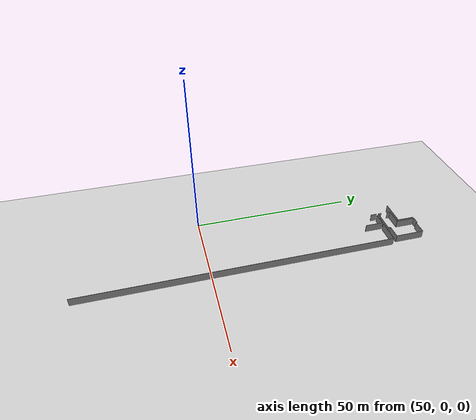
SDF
<sdf version="1.6">
 <world name="default">
  <model name="ground_plane">
   <static>1</static>
   <link name="link">
    <collision name="collision">
     <geometry><plane><normal>0 0 1</normal><size>100 100</size></plane></geometry>
     <surface><friction><ode><mu>100</mu><mu2>50</mu2></ode></friction></surface>
    </collision>
    <visual name="visual">
     <cast_shadows>0</cast_shadows>
     <geometry><plane><normal>0 0 1</normal><size>100 100</size></plane></geometry>
     <material>
      <script><uri>file://media/materials/scripts/gazebo.material</uri><name>Gazebo/Grey</name></script>
     </material>
    </visual>
   </link>
  </model>
  <model name="50036893">
   <static>1</static>
   <link name="Wall_307">
    <collision name="Wall_307_Collision">
     <geometry><box><size>1.8739894875 0.1 2.5</size></box></geometry>
     <pose>0.93699474375 0 1.25 0 0 0</pose>
    </collision>
    <visual name="Wall_307_Visual">
     <pose>0.93699474375 0 1.25 0 0 0</pose>
     <geometry><box><size>1.8739894875 0.1 2.5</size></box></geometry>
     <material>
      <script><uri>file://media/materials/scripts/gazebo.material</uri><name>Gazebo/Grey</name></script>
      <ambient>1 1 1 1</ambient>
     </material>
    </visual>
    <pose>136.265082394 -10.8799939131 0 0 0 -1.57079632679</pose>
   </link>
   <link name="Wall_311">
    <collision name="Wall_311_Collision">
     <geometry><box><size>7.13429750756 0.1 2.5</size></box></geometry>
     <pose>3.56714875378 0 1.25 0 0 0</pose>
    </collision>
    <visual name="Wall_311_Visual">
     <pose>3.56714875378 0 1.25 0 0 0</pose>
     <geometry><box><size>7.13429750756 0.1 2.5</size></box></geometry>
     <material>
      <script><uri>file://media/materials/scripts/gazebo.material</uri><name>Gazebo/Grey</name></script>
      <ambient>1 1 1 1</ambient>
     </material>
    </visual>
    <pose>141.423689266 -10.9380726238 0 0 0 0.0</pose>
   </link>
   <link name="Wall_312">
    <collision name="Wall_312_Collision">
     <geometry><box><size>96.2559521168 0.1 2.5</size></box></geometry>
     <pose>48.1279760584 0 1.25 0 0 0</pose>
    </collision>
    <visual name="Wall_312_Visual">
     <pose>48.1279760584 0 1.25 0 0 0</pose>
     <geometry><box><size>96.2559521168 0.1 2.5</size></box></geometry>
     <material>
      <script><uri>file://media/materials/scripts/gazebo.material</uri><name>Gazebo/Grey</name></script>
      <ambient>1 1 1 1</ambient>
     </material>
    </visual>
    <pose>148.557986774 -10.9380726238 0 0 0 -1.57079632679</pose>
   </link>
   <link name="Wall_496">
    <collision name="Wall_496_Collision">
     <geometry><box><size>5.32751700831 0.1 2.5</size></box></geometry>
     <pose>2.66375850416 0 1.25 0 0 0</pose>
    </collision>
    <visual name="Wall_496_Visual">
     <pose>2.66375850416 0 1.25 0 0 0</pose>
     <geometry><box><size>5.32751700831 0.1 2.5</size></box></geometry>
     <material>
      <script><uri>file://media/materials/scripts/gazebo.material</uri><name>Gazebo/Grey</name></script>
      <ambient>1 1 1 1</ambient>
     </material>
    </visual>
    <pose>140.759207948 -0.0459050070696 0 0 0 -1.57079632679</pose>
   </link>
   <link name="Wall_497">
    <collision name="Wall_497_Collision">
     <geometry><box><size>7.75566362535 0.1 2.5</size></box></geometry>
     <pose>3.87783181268 0 1.25 0 0 0</pose>
    </collision>
    <visual name="Wall_497_Visual">
     <pose>3.87783181268 0 1.25 0 0 0</pose>
     <geometry><box><size>7.75566362535 0.1 2.5</size></box></geometry>
     <material>
      <script><uri>file://media/materials/scripts/gazebo.material</uri><name>Gazebo/Grey</name></script>
      <ambient>1 1 1 1</ambient>
     </material>
    </visual>
    <pose>140.759207948 -5.37342201538 0 0 0 3.14159265359</pose>
   </link>
   <link name="Wall_500">
    <collision name="Wall_500_Collision">
     <geometry><box><size>4.98614607176 0.1 2.5</size></box></geometry>
     <pose>2.49307303588 0 1.25 0 0 0</pose>
    </collision>
    <visual name="Wall_500_Visual">
     <pose>2.49307303588 0 1.25 0 0 0</pose>
     <geometry><box><size>4.98614607176 0.1 2.5</size></box></geometry>
     <material>
      <script><uri>file://media/materials/scripts/gazebo.material</uri><name>Gazebo/Grey</name></script>
      <ambient>1 1 1 1</ambient>
     </material>
    </visual>
    <pose>136.323414724 -6.05134513084 0 0 0 0.0</pose>
   </link>
   <link name="Wall_501">
    <collision name="Wall_501_Collision">
     <geometry><box><size>5.98667233082 0.1 2.5</size></box></geometry>
     <pose>2.99333616541 0 1.25 0 0 0</pose>
    </collision>
    <visual name="Wall_501_Visual">
     <pose>2.99333616541 0 1.25 0 0 0</pose>
     <geometry><box><size>5.98667233082 0.1 2.5</size></box></geometry>
     <material>
      <script><uri>file://media/materials/scripts/gazebo.material</uri><name>Gazebo/Grey</name></script>
      <ambient>1 1 1 1</ambient>
     </material>
    </visual>
    <pose>141.309560796 -6.05134513084 0 0 0 1.57079632679</pose>
   </link>
   <link name="Wall_502">
    <collision name="Wall_502_Collision">
     <geometry><box><size>2.16590475345 0.1 2.5</size></box></geometry>
     <pose>1.08295237673 0 1.25 0 0 0</pose>
    </collision>
    <visual name="Wall_502_Visual">
     <pose>1.08295237673 0 1.25 0 0 0</pose>
     <geometry><box><size>2.16590475345 0.1 2.5</size></box></geometry>
     <material>
      <script><uri>file://media/materials/scripts/gazebo.material</uri><name>Gazebo/Grey</name></script>
      <ambient>1 1 1 1</ambient>
     </material>
    </visual>
    <pose>141.309560796 -0.0646728000152 0 0 0 0.0</pose>
   </link>
   <link name="Wall_503">
    <collision name="Wall_503_Collision">
     <geometry><box><size>0.465136922462 0.1 2.5</size></box></geometry>
     <pose>0.232568461231 0 1.25 0 0 0</pose>
    </collision>
    <visual name="Wall_503_Visual">
     <pose>0.232568461231 0 1.25 0 0 0</pose>
     <geometry><box><size>0.465136922462 0.1 2.5</size></box></geometry>
     <material>
      <script><uri>file://media/materials/scripts/gazebo.material</uri><name>Gazebo/Grey</name></script>
      <ambient>1 1 1 1</ambient>
     </material>
    </visual>
    <pose>143.475465549 -0.0646728000152 0 0 0 -1.57079632679</pose>
   </link>
   <link name="Wall_504">
    <collision name="Wall_504_Collision">
     <geometry><box><size>4.29883905984 0.1 2.5</size></box></geometry>
     <pose>2.14941952992 0 1.25 0 0 0</pose>
    </collision>
    <visual name="Wall_504_Visual">
     <pose>2.14941952992 0 1.25 0 0 0</pose>
     <geometry><box><size>4.29883905984 0.1 2.5</size></box></geometry>
     <material>
      <script><uri>file://media/materials/scripts/gazebo.material</uri><name>Gazebo/Grey</name></script>
      <ambient>1 1 1 1</ambient>
     </material>
    </visual>
    <pose>143.475465549 -0.529809722478 0 0 0 0.0</pose>
   </link>
   <link name="Wall_505">
    <collision name="Wall_505_Collision">
     <geometry><box><size>8.95147637858 0.1 2.5</size></box></geometry>
     <pose>4.47573818929 0 1.25 0 0 0</pose>
    </collision>
    <visual name="Wall_505_Visual">
     <pose>4.47573818929 0 1.25 0 0 0</pose>
     <geometry><box><size>8.95147637858 0.1 2.5</size></box></geometry>
     <material>
      <script><uri>file://media/materials/scripts/gazebo.material</uri><name>Gazebo/Grey</name></script>
      <ambient>1 1 1 1</ambient>
     </material>
    </visual>
    <pose>147.774304609 -0.529809722478 0 0 0 -1.57079632679</pose>
   </link>
   <link name="Wall_506">
    <collision name="Wall_506_Collision">
     <geometry><box><size>4.28362193042 0.1 2.5</size></box></geometry>
     <pose>2.14181096521 0 1.25 0 0 0</pose>
    </collision>
    <visual name="Wall_506_Visual">
     <pose>2.14181096521 0 1.25 0 0 0</pose>
     <geometry><box><size>4.28362193042 0.1 2.5</size></box></geometry>
     <material>
      <script><uri>file://media/materials/scripts/gazebo.material</uri><name>Gazebo/Grey</name></script>
      <ambient>1 1 1 1</ambient>
     </material>
    </visual>
    <pose>147.774304609 -9.48128610105 0 0 0 3.14159265359</pose>
   </link>
   <link name="Wall_507">
    <collision name="Wall_507_Collision">
     <geometry><box><size>0.742342296645 0.1 2.5</size></box></geometry>
     <pose>0.371171148323 0 1.25 0 0 0</pose>
    </collision>
    <visual name="Wall_507_Visual">
     <pose>0.371171148323 0 1.25 0 0 0</pose>
     <geometry><box><size>0.742342296645 0.1 2.5</size></box></geometry>
     <material>
      <script><uri>file://media/materials/scripts/gazebo.material</uri><name>Gazebo/Grey</name></script>
      <ambient>1 1 1 1</ambient>
     </material>
    </visual>
    <pose>143.490682678 -9.48128610105 0 0 0 -1.57079632679</pose>
   </link>
   <link name="Wall_508">
    <collision name="Wall_508_Collision">
     <geometry><box><size>5.31077816596 0.1 2.5</size></box></geometry>
     <pose>2.65538908298 0 1.25 0 0 0</pose>
    </collision>
    <visual name="Wall_508_Visual">
     <pose>2.65538908298 0 1.25 0 0 0</pose>
     <geometry><box><size>5.31077816596 0.1 2.5</size></box></geometry>
     <material>
      <script><uri>file://media/materials/scripts/gazebo.material</uri><name>Gazebo/Grey</name></script>
      <ambient>1 1 1 1</ambient>
     </material>
    </visual>
    <pose>143.490682678 -10.2236283977 0 0 0 3.14159265359</pose>
   </link>
   <link name="Wall_509">
    <collision name="Wall_509_Collision">
     <geometry><box><size>1.8793154828 0.1 2.5</size></box></geometry>
     <pose>0.939657741398 0 1.25 0 0 0</pose>
    </collision>
    <visual name="Wall_509_Visual">
     <pose>0.939657741398 0 1.25 0 0 0</pose>
     <geometry><box><size>1.8793154828 0.1 2.5</size></box></geometry>
     <material>
      <script><uri>file://media/materials/scripts/gazebo.material</uri><name>Gazebo/Grey</name></script>
      <ambient>1 1 1 1</ambient>
     </material>
    </visual>
    <pose>138.179904513 -10.2236283977 0 0 0 3.14159265359</pose>
   </link>
   <link name="Wall_510">
    <collision name="Wall_510_Collision">
     <geometry><box><size>1.0515036426 0.1 2.5</size></box></geometry>
     <pose>0.5257518213 0 1.25 0 0 0</pose>
    </collision>
    <visual name="Wall_510_Visual">
     <pose>0.5257518213 0 1.25 0 0 0</pose>
     <geometry><box><size>1.0515036426 0.1 2.5</size></box></geometry>
     <material>
      <script><uri>file://media/materials/scripts/gazebo.material</uri><name>Gazebo/Grey</name></script>
      <ambient>1 1 1 1</ambient>
     </material>
    </visual>
    <pose>136.30058903 -10.2236283977 0 0 0 1.57079632679</pose>
   </link>
   <link name="Wall_511">
    <collision name="Wall_511_Collision">
     <geometry><box><size>0.986334137008 0.1 2.5</size></box></geometry>
     <pose>0.493167068504 0 1.25 0 0 0</pose>
    </collision>
    <visual name="Wall_511_Visual">
     <pose>0.493167068504 0 1.25 0 0 0</pose>
     <geometry><box><size>0.986334137008 0.1 2.5</size></box></geometry>
     <material>
      <script><uri>file://media/materials/scripts/gazebo.material</uri><name>Gazebo/Grey</name></script>
      <ambient>1 1 1 1</ambient>
     </material>
    </visual>
    <pose>136.30058903 -7.03741511695 0 0 0 1.54765231186</pose>
   </link>
   <link name="Wall_518">
    <collision name="Wall_518_Collision">
     <geometry><box><size>3.89304894209 0.1 2.5</size></box></geometry>
     <pose>1.94652447105 0 1.25 0 0 0</pose>
    </collision>
    <visual name="Wall_518_Visual">
     <pose>1.94652447105 0 1.25 0 0 0</pose>
     <geometry><box><size>3.89304894209 0.1 2.5</size></box></geometry>
     <material>
      <script><uri>file://media/materials/scripts/gazebo.material</uri><name>Gazebo/Grey</name></script>
      <ambient>1 1 1 1</ambient>
     </material>
    </visual>
    <pose>136.899129453 -10.9330002473 0 0 0 0.0</pose>
   </link>
   <link name="Wall_519">
    <collision name="Wall_519_Collision">
     <geometry><box><size>5.65290995898 0.1 2.5</size></box></geometry>
     <pose>2.82645497949 0 1.25 0 0 0</pose>
    </collision>
    <visual name="Wall_519_Visual">
     <pose>2.82645497949 0 1.25 0 0 0</pose>
     <geometry><box><size>5.65290995898 0.1 2.5</size></box></geometry>
     <material>
      <script><uri>file://media/materials/scripts/gazebo.material</uri><name>Gazebo/Grey</name></script>
      <ambient>1 1 1 1</ambient>
     </material>
    </visual>
    <pose>140.792178395 -10.9330002473 0 0 0 -1.57079632679</pose>
   </link>
   <pose>-74.25 67.8925905261 0 0 0 0</pose>
  </model>
 </world>
</sdf>
